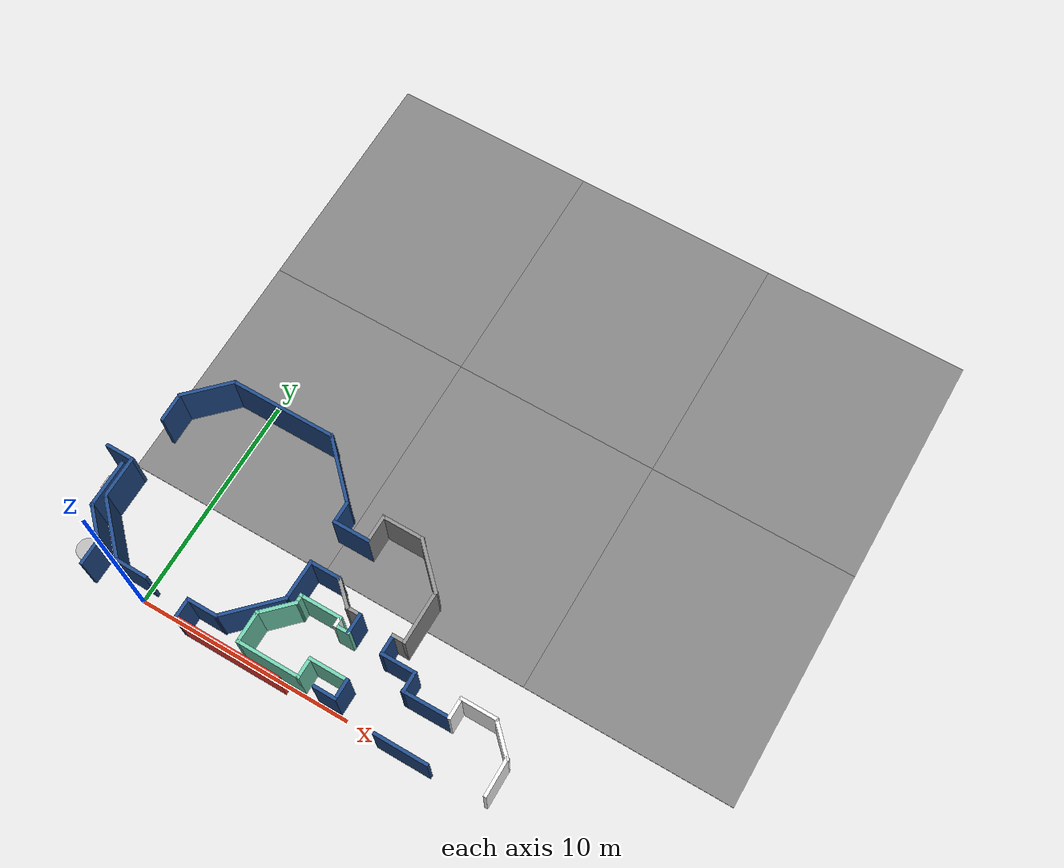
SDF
<sdf version="1.7">
 <world name="default">
  <model name="among_us_world">
   <pose>0.133216 -0.12311 0 0 -0 0</pose>
   <link name="Wall_0">
    <collision name="Wall_0_Collision">
     <geometry><box><size>5 0.15 2.5</size></box></geometry>
     <pose>0 0 1.25 0 -0 0</pose>
    </collision>
    <visual name="Wall_0_Visual">
     <pose>0 0 1.25 0 -0 0</pose>
     <geometry><box><size>5 0.15 2.5</size></box></geometry>
     <material>
      <ambient>0.12549 0.290196 0.529412 1</ambient>
      <diffuse>0.12549 0.290196 0.529412 1</diffuse>
      <specular>0.08 0.08 0.08 1</specular>
      <emissive>0 0 0 1</emissive>
      <pbr>
       <metal>
        <albedo_map>model://asphalt_plane/materials/textures/tarmac.png</albedo_map>
        <roughness>0.85</roughness>
        <metalness>0</metalness>
       </metal>
      </pbr>
     </material>
     <meta><layer>0</layer></meta>
    </visual>
    <pose>0.883234 9.56872 0 0 -0 0</pose>
   </link>
   <link name="Wall_1">
    <collision name="Wall_1_Collision">
     <geometry><box><size>3.25 0.15 2.5</size></box></geometry>
     <pose>0 0 1.25 0 -0 0</pose>
    </collision>
    <visual name="Wall_1_Visual">
     <pose>0 0 1.25 0 -0 0</pose>
     <geometry><box><size>3.25 0.15 2.5</size></box></geometry>
     <material>
      <ambient>0.12549 0.290196 0.529412 1</ambient>
      <diffuse>0.12549 0.290196 0.529412 1</diffuse>
      <specular>0.08 0.08 0.08 1</specular>
      <emissive>0 0 0 1</emissive>
      <pbr>
       <metal>
        <albedo_map>model://asphalt_plane/materials/textures/tarmac.png</albedo_map>
        <roughness>0.85</roughness>
        <metalness>0</metalness>
       </metal>
      </pbr>
     </material>
     <meta><layer>0</layer></meta>
    </visual>
    <pose>4.40446 8.47278 0 0 -0 -0.785267</pose>
   </link>
   <link name="Wall_10">
    <collision name="Wall_10_Collision">
     <geometry><box><size>0.677967 0.15 2.5</size></box></geometry>
     <pose>0 0 1.25 0 -0 0</pose>
    </collision>
    <visual name="Wall_10_Visual">
     <pose>0 0 1.25 0 -0 0</pose>
     <geometry><box><size>0.677967 0.15 2.5</size></box></geometry>
     <material>
      <ambient>0.55 0.55 0.55 1</ambient>
      <diffuse>0.55 0.55 0.55 1</diffuse>
      <specular>0.08 0.08 0.08 1</specular>
      <emissive>0 0 0 1</emissive>
      <pbr><metal><roughness>0.85</roughness><metalness>0</metalness></metal></pbr>
     </material>
     <meta><layer>0</layer></meta>
    </visual>
    <pose>10.3484 3.61514 0 0 -0 3.14159</pose>
   </link>
   <link name="Wall_105">
    <collision name="Wall_105_Collision">
     <geometry><box><size>1.25 0.15 2.5</size></box></geometry>
     <pose>0 0 1.25 0 -0 0</pose>
    </collision>
    <visual name="Wall_105_Visual">
     <pose>0 0 1.25 0 -0 0</pose>
     <geometry><box><size>1.25 0.15 2.5</size></box></geometry>
     <material>
      <ambient>0.12549 0.290196 0.529412 1</ambient>
      <diffuse>0.12549 0.290196 0.529412 1</diffuse>
      <specular>0.08 0.08 0.08 1</specular>
      <emissive>0 0 0 1</emissive>
      <pbr>
       <metal>
        <albedo_map>model://among_us_world/materials/textures/ceiling_tiled_32_74_135.jpg</albedo_map>
        <roughness>0.85</roughness>
        <metalness>0</metalness>
       </metal>
      </pbr>
     </material>
     <meta><layer>0</layer></meta>
    </visual>
    <pose>-2.35669 0.402728 0 0 -0 1.5708</pose>
   </link>
   <link name="Wall_106">
    <collision name="Wall_106_Collision">
     <geometry><box><size>1.75 0.15 2.5</size></box></geometry>
     <pose>0 0 1.25 0 -0 0</pose>
    </collision>
    <visual name="Wall_106_Visual">
     <pose>0 0 1.25 0 -0 0</pose>
     <geometry><box><size>1.75 0.15 2.5</size></box></geometry>
     <material>
      <ambient>0.12549 0.290196 0.529412 1</ambient>
      <diffuse>0.12549 0.290196 0.529412 1</diffuse>
      <specular>0.08 0.08 0.08 1</specular>
      <emissive>0 0 0 1</emissive>
      <pbr>
       <metal>
        <albedo_map>model://among_us_world/materials/textures/ceiling_tiled_32_74_135.jpg</albedo_map>
        <roughness>0.85</roughness>
        <metalness>0</metalness>
       </metal>
      </pbr>
     </material>
     <meta><layer>0</layer></meta>
    </visual>
    <pose>-2.92238 1.51841 0 0 -0 2.35619</pose>
   </link>
   <link name="Wall_108">
    <collision name="Wall_108_Collision">
     <geometry><box><size>2.25 0.15 2.5</size></box></geometry>
     <pose>0 0 1.25 0 -0 0</pose>
    </collision>
    <visual name="Wall_108_Visual">
     <pose>0 0 1.25 0 -0 0</pose>
     <geometry><box><size>2.25 0.15 2.5</size></box></geometry>
     <material>
      <ambient>0.12549 0.290196 0.529412 1</ambient>
      <diffuse>0.12549 0.290196 0.529412 1</diffuse>
      <specular>0.08 0.08 0.08 1</specular>
      <emissive>0 0 0 1</emissive>
      <pbr>
       <metal>
        <albedo_map>model://among_us_world/materials/textures/ceiling_tiled_32_74_135.jpg</albedo_map>
        <roughness>0.85</roughness>
        <metalness>0</metalness>
       </metal>
      </pbr>
     </material>
     <meta><layer>0</layer></meta>
    </visual>
    <pose>-3.48806 3.1341 0 0 -0 1.5708</pose>
   </link>
   <link name="Wall_11">
    <collision name="Wall_11_Collision">
     <geometry><box><size>1 0.15 2.5</size></box></geometry>
     <pose>0 0 1.25 0 -0 0</pose>
    </collision>
    <visual name="Wall_11_Visual">
     <pose>0 0 1.25 0 -0 0</pose>
     <geometry><box><size>1 0.15 2.5</size></box></geometry>
     <material>
      <ambient>0.12549 0.290196 0.529412 1</ambient>
      <diffuse>0.12549 0.290196 0.529412 1</diffuse>
      <specular>0.08 0.08 0.08 1</specular>
      <emissive>0 0 0 1</emissive>
      <pbr>
       <metal>
        <albedo_map>model://asphalt_plane/materials/textures/tarmac.png</albedo_map>
        <roughness>0.85</roughness>
        <metalness>0</metalness>
       </metal>
      </pbr>
     </material>
     <meta><layer>0</layer></meta>
    </visual>
    <pose>10.0844 3.17225 0 0 -0 -1.5708</pose>
   </link>
   <link name="Wall_111">
    <collision name="Wall_111_Collision">
     <geometry><box><size>1.37673 0.15 2.5</size></box></geometry>
     <pose>0 0 1.25 0 -0 0</pose>
    </collision>
    <visual name="Wall_111_Visual">
     <pose>0 0 1.25 0 -0 0</pose>
     <geometry><box><size>1.37673 0.15 2.5</size></box></geometry>
     <material>
      <ambient>0.12549 0.290196 0.529412 1</ambient>
      <diffuse>0.12549 0.290196 0.529412 1</diffuse>
      <specular>0.08 0.08 0.08 1</specular>
      <emissive>0 0 0 1</emissive>
      <pbr>
       <metal>
        <albedo_map>model://asphalt_plane/materials/textures/tarmac.png</albedo_map>
        <roughness>0.85</roughness>
        <metalness>0</metalness>
       </metal>
      </pbr>
     </material>
     <meta><layer>0</layer></meta>
    </visual>
    <pose>-3.85134 4.5341 0 0 -0 0</pose>
   </link>
   <link name="Wall_112">
    <collision name="Wall_112_Collision">
     <geometry><box><size>2 0.15 2.5</size></box></geometry>
     <pose>0 0 1.25 0 -0 0</pose>
    </collision>
    <visual name="Wall_112_Visual">
     <pose>0 0 1.25 0 -0 0</pose>
     <geometry><box><size>2 0.15 2.5</size></box></geometry>
     <material>
      <ambient>0.12549 0.290196 0.529412 1</ambient>
      <diffuse>0.12549 0.290196 0.529412 1</diffuse>
      <specular>0.08 0.08 0.08 1</specular>
      <emissive>0 0 0 1</emissive>
      <pbr>
       <metal>
        <albedo_map>model://asphalt_plane/materials/textures/tarmac.png</albedo_map>
        <roughness>0.85</roughness>
        <metalness>0</metalness>
       </metal>
      </pbr>
     </material>
     <meta><layer>0</layer></meta>
    </visual>
    <pose>-3.23806 3.6091 0 0 -0 -1.5708</pose>
   </link>
   <link name="Wall_114">
    <collision name="Wall_114_Collision">
     <geometry><box><size>3 0.15 2.5</size></box></geometry>
     <pose>0 0 1.25 0 -0 0</pose>
    </collision>
    <visual name="Wall_114_Visual">
     <pose>0 0 1.25 0 -0 0</pose>
     <geometry><box><size>3 0.15 2.5</size></box></geometry>
     <material>
      <ambient>0.12549 0.290196 0.529412 1</ambient>
      <diffuse>0.12549 0.290196 0.529412 1</diffuse>
      <specular>0.08 0.08 0.08 1</specular>
      <emissive>0 0 0 1</emissive>
      <pbr>
       <metal>
        <albedo_map>model://asphalt_plane/materials/textures/tarmac.png</albedo_map>
        <roughness>0.85</roughness>
        <metalness>0</metalness>
       </metal>
      </pbr>
     </material>
     <meta><layer>0</layer></meta>
    </visual>
    <pose>-2.23043 1.67647 0 0 -0 -0.785398</pose>
   </link>
   <link name="Wall_115">
    <collision name="Wall_115_Collision">
     <geometry><box><size>1.5655 0.15 2.5</size></box></geometry>
     <pose>0 0 1.25 0 -0 0</pose>
    </collision>
    <visual name="Wall_115_Visual">
     <pose>0 0 1.25 0 -0 0</pose>
     <geometry><box><size>1.5655 0.15 2.5</size></box></geometry>
     <material>
      <ambient>0.12549 0.290196 0.529412 1</ambient>
      <diffuse>0.12549 0.290196 0.529412 1</diffuse>
      <specular>0.08 0.08 0.08 1</specular>
      <emissive>0 0 0 1</emissive>
      <pbr>
       <metal>
        <albedo_map>model://asphalt_plane/materials/textures/tarmac.png</albedo_map>
        <roughness>0.85</roughness>
        <metalness>0</metalness>
       </metal>
      </pbr>
     </material>
     <meta><layer>0</layer></meta>
    </visual>
    <pose>-0.515099 0.662156 0 0 -0 -0.00945</pose>
   </link>
   <link name="Wall_118">
    <collision name="Wall_118_Collision">
     <geometry><box><size>1.5 0.15 2.5</size></box></geometry>
     <pose>0 0 1.25 0 -0 0</pose>
    </collision>
    <visual name="Wall_118_Visual">
     <pose>0 0 1.25 0 -0 0</pose>
     <geometry><box><size>1.5 0.15 2.5</size></box></geometry>
     <material>
      <ambient>0.12549 0.290196 0.529412 1</ambient>
      <diffuse>0.12549 0.290196 0.529412 1</diffuse>
      <specular>0.08 0.08 0.08 1</specular>
      <emissive>0 0 0 1</emissive>
      <pbr>
       <metal>
        <albedo_map>model://asphalt_plane/materials/textures/tarmac.png</albedo_map>
        <roughness>0.85</roughness>
        <metalness>0</metalness>
       </metal>
      </pbr>
     </material>
     <meta><layer>0</layer></meta>
    </visual>
    <pose>6.27303 4.52497 0 0 -0 0</pose>
   </link>
   <link name="Wall_119">
    <collision name="Wall_119_Collision">
     <geometry><box><size>1.41276 0.15 2.5</size></box></geometry>
     <pose>0 0 1.25 0 -0 0</pose>
    </collision>
    <visual name="Wall_119_Visual">
     <pose>0 0 1.25 0 -0 0</pose>
     <geometry><box><size>1.41276 0.15 2.5</size></box></geometry>
     <material>
      <ambient>0.55 0.55 0.55 1</ambient>
      <diffuse>0.55 0.55 0.55 1</diffuse>
      <specular>0.08 0.08 0.08 1</specular>
      <emissive>0 0 0 1</emissive>
      <pbr><metal><roughness>0.85</roughness><metalness>0</metalness></metal></pbr>
     </material>
     <meta><layer>0</layer></meta>
    </visual>
    <pose>7.42533 4.09435 0 0 -0 -0.750545</pose>
   </link>
   <link name="Wall_12">
    <collision name="Wall_12_Collision">
     <geometry><box><size>1.67797 0.15 2.5</size></box></geometry>
     <pose>0 0 1.25 0 -0 0</pose>
    </collision>
    <visual name="Wall_12_Visual">
     <pose>0 0 1.25 0 -0 0</pose>
     <geometry><box><size>1.67797 0.15 2.5</size></box></geometry>
     <material>
      <ambient>0.12549 0.290196 0.529412 1</ambient>
      <diffuse>0.12549 0.290196 0.529412 1</diffuse>
      <specular>0.08 0.08 0.08 1</specular>
      <emissive>0 0 0 1</emissive>
      <pbr>
       <metal>
        <albedo_map>model://asphalt_plane/materials/textures/tarmac.png</albedo_map>
        <roughness>0.85</roughness>
        <metalness>0</metalness>
       </metal>
      </pbr>
     </material>
     <meta><layer>0</layer></meta>
    </visual>
    <pose>10.8484 2.76514 0 0 -0 0</pose>
   </link>
   <link name="Wall_122">
    <collision name="Wall_122_Collision">
     <geometry><box><size>0.75 0.15 2.5</size></box></geometry>
     <pose>0 0 1.25 0 -0 0</pose>
    </collision>
    <visual name="Wall_122_Visual">
     <pose>0 0 1.25 0 -0 0</pose>
     <geometry><box><size>0.75 0.15 2.5</size></box></geometry>
     <material>
      <ambient>0.55 0.55 0.55 1</ambient>
      <diffuse>0.55 0.55 0.55 1</diffuse>
      <specular>0.08 0.08 0.08 1</specular>
      <emissive>0 0 0 1</emissive>
      <pbr><metal><roughness>0.85</roughness><metalness>0</metalness></metal></pbr>
     </material>
     <meta><layer>0</layer></meta>
    </visual>
    <pose>8.18707 3.66372 0 0 -0 0</pose>
   </link>
   <link name="Wall_123">
    <collision name="Wall_123_Collision">
     <geometry><box><size>1 0.15 2.5</size></box></geometry>
     <pose>0 0 1.25 0 -0 0</pose>
    </collision>
    <visual name="Wall_123_Visual">
     <pose>0 0 1.25 0 -0 0</pose>
     <geometry><box><size>1 0.15 2.5</size></box></geometry>
     <material>
      <ambient>0.12549 0.290196 0.529412 1</ambient>
      <diffuse>0.12549 0.290196 0.529412 1</diffuse>
      <specular>0.08 0.08 0.08 1</specular>
      <emissive>0 0 0 1</emissive>
      <pbr>
       <metal>
        <albedo_map>model://asphalt_plane/materials/textures/tarmac.png</albedo_map>
        <roughness>0.85</roughness>
        <metalness>0</metalness>
       </metal>
      </pbr>
     </material>
     <meta><layer>0</layer></meta>
    </visual>
    <pose>8.48707 3.23872 0 0 -0 -1.5708</pose>
   </link>
   <link name="Wall_124">
    <collision name="Wall_124_Collision">
     <geometry><box><size>0.75 0.15 2.5</size></box></geometry>
     <pose>0 0 1.25 0 -0 0</pose>
    </collision>
    <visual name="Wall_124_Visual">
     <pose>0 0 1.25 0 -0 0</pose>
     <geometry><box><size>0.75 0.15 2.5</size></box></geometry>
     <material>
      <ambient>0.435294 0.796078 0.67451 1</ambient>
      <diffuse>0.435294 0.796078 0.67451 1</diffuse>
      <specular>0.08 0.08 0.08 1</specular>
      <emissive>0 0 0 1</emissive>
      <pbr>
       <metal>
        <albedo_map>model://among_us_world/materials/textures/ceiling_tiled_111_203_172.jpg</albedo_map>
        <roughness>0.85</roughness>
        <metalness>0</metalness>
       </metal>
      </pbr>
     </material>
     <meta><layer>0</layer></meta>
    </visual>
    <pose>8.18707 2.81372 0 0 -0 3.14159</pose>
   </link>
   <link name="Wall_125">
    <collision name="Wall_125_Collision">
     <geometry><box><size>0.5 0.15 2.5</size></box></geometry>
     <pose>0 0 1.25 0 -0 0</pose>
    </collision>
    <visual name="Wall_125_Visual">
     <pose>0 0 1.25 0 -0 0</pose>
     <geometry><box><size>0.5 0.15 2.5</size></box></geometry>
     <material>
      <ambient>1 1 1 1</ambient>
      <diffuse>1 1 1 1</diffuse>
      <specular>0.08 0.08 0.08 1</specular>
      <emissive>0 0 0 1</emissive>
      <pbr>
       <metal>
        <albedo_map>model://among_us_world/materials/textures/ceiling_tiled_255_255_255.jpg</albedo_map>
        <roughness>0.85</roughness>
        <metalness>0</metalness>
       </metal>
      </pbr>
     </material>
     <meta><layer>0</layer></meta>
    </visual>
    <pose>7.88707 2.98872 0 0 -0 1.5708</pose>
   </link>
   <link name="Wall_126">
    <collision name="Wall_126_Collision">
     <geometry><box><size>2 0.15 2.5</size></box></geometry>
     <pose>0 0 1.25 0 -0 0</pose>
    </collision>
    <visual name="Wall_126_Visual">
     <pose>0 0 1.25 0 -0 0</pose>
     <geometry><box><size>2 0.15 2.5</size></box></geometry>
     <material>
      <ambient>0.435294 0.796078 0.67451 1</ambient>
      <diffuse>0.435294 0.796078 0.67451 1</diffuse>
      <specular>0.08 0.08 0.08 1</specular>
      <emissive>0 0 0 1</emissive>
      <pbr>
       <metal>
        <albedo_map>model://among_us_world/materials/textures/ceiling_tiled_111_203_172.jpg</albedo_map>
        <roughness>0.85</roughness>
        <metalness>0</metalness>
       </metal>
      </pbr>
     </material>
     <meta><layer>0</layer></meta>
    </visual>
    <pose>6.96207 3.16372 0 0 -0 3.14159</pose>
   </link>
   <link name="Wall_127">
    <collision name="Wall_127_Collision">
     <geometry><box><size>0.5 0.15 2.5</size></box></geometry>
     <pose>0 0 1.25 0 -0 0</pose>
    </collision>
    <visual name="Wall_127_Visual">
     <pose>0 0 1.25 0 -0 0</pose>
     <geometry><box><size>0.5 0.15 2.5</size></box></geometry>
     <material>
      <ambient>0.435294 0.796078 0.67451 1</ambient>
      <diffuse>0.435294 0.796078 0.67451 1</diffuse>
      <specular>0.08 0.08 0.08 1</specular>
      <emissive>0 0 0 1</emissive>
      <pbr>
       <metal>
        <albedo_map>model://among_us_world/materials/textures/ceiling_tiled_111_203_172.jpg</albedo_map>
        <roughness>0.85</roughness>
        <metalness>0</metalness>
       </metal>
      </pbr>
     </material>
     <meta><layer>0</layer></meta>
    </visual>
    <pose>6.03707 2.98872 0 0 -0 -1.5708</pose>
   </link>
   <link name="Wall_128">
    <collision name="Wall_128_Collision">
     <geometry><box><size>1.75 0.15 2.5</size></box></geometry>
     <pose>0 0 1.25 0 -0 0</pose>
    </collision>
    <visual name="Wall_128_Visual">
     <pose>0 0 1.25 0 -0 0</pose>
     <geometry><box><size>1.75 0.15 2.5</size></box></geometry>
     <material>
      <ambient>0.435294 0.796078 0.67451 1</ambient>
      <diffuse>0.435294 0.796078 0.67451 1</diffuse>
      <specular>0.08 0.08 0.08 1</specular>
      <emissive>0 0 0 1</emissive>
      <pbr>
       <metal>
        <albedo_map>model://among_us_world/materials/textures/ceiling_tiled_111_203_172.jpg</albedo_map>
        <roughness>0.85</roughness>
        <metalness>0</metalness>
       </metal>
      </pbr>
     </material>
     <meta><layer>0</layer></meta>
    </visual>
    <pose>5.47138 2.24804 0 0 -0 -2.35619</pose>
   </link>
   <link name="Wall_129">
    <collision name="Wall_129_Collision">
     <geometry><box><size>1.5 0.15 2.5</size></box></geometry>
     <pose>0 0 1.25 0 -0 0</pose>
    </collision>
    <visual name="Wall_129_Visual">
     <pose>0 0 1.25 0 -0 0</pose>
     <geometry><box><size>1.5 0.15 2.5</size></box></geometry>
     <material>
      <ambient>0.435294 0.796078 0.67451 1</ambient>
      <diffuse>0.435294 0.796078 0.67451 1</diffuse>
      <specular>0.08 0.08 0.08 1</specular>
      <emissive>0 0 0 1</emissive>
      <pbr><metal><roughness>0.85</roughness><metalness>0</metalness></metal></pbr>
     </material>
     <meta><layer>0</layer></meta>
    </visual>
    <pose>4.9057 1.00735 0 0 -0 -1.5708</pose>
   </link>
   <link name="Wall_13">
    <collision name="Wall_13_Collision">
     <geometry><box><size>0.99953 0.15 2.5</size></box></geometry>
     <pose>0 0 1.25 0 -0 0</pose>
    </collision>
    <visual name="Wall_13_Visual">
     <pose>0 0 1.25 0 -0 0</pose>
     <geometry><box><size>0.99953 0.15 2.5</size></box></geometry>
     <material>
      <ambient>0.12549 0.290196 0.529412 1</ambient>
      <diffuse>0.12549 0.290196 0.529412 1</diffuse>
      <specular>0.08 0.08 0.08 1</specular>
      <emissive>0 0 0 1</emissive>
      <pbr>
       <metal>
        <albedo_map>model://asphalt_plane/materials/textures/tarmac.png</albedo_map>
        <roughness>0.85</roughness>
        <metalness>0</metalness>
       </metal>
      </pbr>
     </material>
     <meta><layer>0</layer></meta>
    </visual>
    <pose>11.6124 2.34037 0 0 -0 -1.5708</pose>
   </link>
   <link name="Wall_130">
    <collision name="Wall_130_Collision">
     <geometry><box><size>3 0.15 2.5</size></box></geometry>
     <pose>0 0 1.25 0 -0 0</pose>
    </collision>
    <visual name="Wall_130_Visual">
     <pose>0 0 1.25 0 -0 0</pose>
     <geometry><box><size>3 0.15 2.5</size></box></geometry>
     <material>
      <ambient>0.435294 0.796078 0.67451 1</ambient>
      <diffuse>0.435294 0.796078 0.67451 1</diffuse>
      <specular>0.08 0.08 0.08 1</specular>
      <emissive>0 0 0 1</emissive>
      <pbr>
       <metal>
        <albedo_map>model://among_us_world/materials/textures/ceiling_tiled_111_203_172.jpg</albedo_map>
        <roughness>0.85</roughness>
        <metalness>0</metalness>
       </metal>
      </pbr>
     </material>
     <meta><layer>0</layer></meta>
    </visual>
    <pose>6.3307 0.332351 0 0 -0 0</pose>
   </link>
   <link name="Wall_131">
    <collision name="Wall_131_Collision">
     <geometry><box><size>1 0.15 2.5</size></box></geometry>
     <pose>0 0 1.25 0 -0 0</pose>
    </collision>
    <visual name="Wall_131_Visual">
     <pose>0 0 1.25 0 -0 0</pose>
     <geometry><box><size>1 0.15 2.5</size></box></geometry>
     <material>
      <ambient>0.435294 0.796078 0.67451 1</ambient>
      <diffuse>0.435294 0.796078 0.67451 1</diffuse>
      <specular>0.08 0.08 0.08 1</specular>
      <emissive>0 0 0 1</emissive>
      <pbr>
       <metal>
        <albedo_map>model://among_us_world/materials/textures/ceiling_tiled_111_203_172.jpg</albedo_map>
        <roughness>0.85</roughness>
        <metalness>0</metalness>
       </metal>
      </pbr>
     </material>
     <meta><layer>0</layer></meta>
    </visual>
    <pose>7.7557 0.757351 0 0 -0 1.5708</pose>
   </link>
   <link name="Wall_132">
    <collision name="Wall_132_Collision">
     <geometry><box><size>1.85593 0.15 2.5</size></box></geometry>
     <pose>0 0 1.25 0 -0 0</pose>
    </collision>
    <visual name="Wall_132_Visual">
     <pose>0 0 1.25 0 -0 0</pose>
     <geometry><box><size>1.85593 0.15 2.5</size></box></geometry>
     <material>
      <ambient>0.435294 0.796078 0.67451 1</ambient>
      <diffuse>0.435294 0.796078 0.67451 1</diffuse>
      <specular>0.08 0.08 0.08 1</specular>
      <emissive>0 0 0 1</emissive>
      <pbr>
       <metal>
        <albedo_map>model://among_us_world/materials/textures/ceiling_tiled_111_203_172.jpg</albedo_map>
        <roughness>0.85</roughness>
        <metalness>0</metalness>
       </metal>
      </pbr>
     </material>
     <meta><layer>0</layer></meta>
    </visual>
    <pose>8.60867 1.18235 0 0 -0 0</pose>
   </link>
   <link name="Wall_133">
    <collision name="Wall_133_Collision">
     <geometry><box><size>1 0.15 2.5</size></box></geometry>
     <pose>0 0 1.25 0 -0 0</pose>
    </collision>
    <visual name="Wall_133_Visual">
     <pose>0 0 1.25 0 -0 0</pose>
     <geometry><box><size>1 0.15 2.5</size></box></geometry>
     <material>
      <ambient>0.12549 0.290196 0.529412 1</ambient>
      <diffuse>0.12549 0.290196 0.529412 1</diffuse>
      <specular>0.08 0.08 0.08 1</specular>
      <emissive>0 0 0 1</emissive>
      <pbr>
       <metal>
        <albedo_map>model://asphalt_plane/materials/textures/tarmac.png</albedo_map>
        <roughness>0.85</roughness>
        <metalness>0</metalness>
       </metal>
      </pbr>
     </material>
     <meta><layer>0</layer></meta>
    </visual>
    <pose>9.47952 0.757351 0 0 -0 -1.5708</pose>
   </link>
   <link name="Wall_134">
    <collision name="Wall_134_Collision">
     <geometry><box><size>1.10593 0.15 2.5</size></box></geometry>
     <pose>0 0 1.25 0 -0 0</pose>
    </collision>
    <visual name="Wall_134_Visual">
     <pose>0 0 1.25 0 -0 0</pose>
     <geometry><box><size>1.10593 0.15 2.5</size></box></geometry>
     <material>
      <ambient>0.12549 0.290196 0.529412 1</ambient>
      <diffuse>0.12549 0.290196 0.529412 1</diffuse>
      <specular>0.08 0.08 0.08 1</specular>
      <emissive>0 0 0 1</emissive>
      <pbr>
       <metal>
        <albedo_map>model://asphalt_plane/materials/textures/tarmac.png</albedo_map>
        <roughness>0.85</roughness>
        <metalness>0</metalness>
       </metal>
      </pbr>
     </material>
     <meta><layer>0</layer></meta>
    </visual>
    <pose>8.98367 0.332351 0 0 -0 3.14159</pose>
   </link>
   <link name="Wall_14">
    <collision name="Wall_14_Collision">
     <geometry><box><size>2.25007 0.15 2.5</size></box></geometry>
     <pose>0 0 1.25 0 -0 0</pose>
    </collision>
    <visual name="Wall_14_Visual">
     <pose>0 0 1.25 0 -0 0</pose>
     <geometry><box><size>2.25007 0.15 2.5</size></box></geometry>
     <material>
      <ambient>0.12549 0.290196 0.529412 1</ambient>
      <diffuse>0.12549 0.290196 0.529412 1</diffuse>
      <specular>0.08 0.08 0.08 1</specular>
      <emissive>0 0 0 1</emissive>
      <pbr>
       <metal>
        <albedo_map>model://asphalt_plane/materials/textures/tarmac.png</albedo_map>
        <roughness>0.85</roughness>
        <metalness>0</metalness>
       </metal>
      </pbr>
     </material>
     <meta><layer>0</layer></meta>
    </visual>
    <pose>12.6445 1.92431 0 0 -0 0.008281</pose>
   </link>
   <link name="Wall_15">
    <collision name="Wall_15_Collision">
     <geometry><box><size>1.02562 0.15 2.5</size></box></geometry>
     <pose>0 0 1.25 0 -0 0</pose>
    </collision>
    <visual name="Wall_15_Visual">
     <pose>0 0 1.25 0 -0 0</pose>
     <geometry><box><size>1.02562 0.15 2.5</size></box></geometry>
     <material>
      <ambient>1 1 1 1</ambient>
      <diffuse>1 1 1 1</diffuse>
      <specular>0.08 0.08 0.08 1</specular>
      <emissive>0 0 0 1</emissive>
      <pbr>
       <metal>
        <albedo_map>model://among_us_world/materials/textures/ceiling_tiled_46_52_54.jpg</albedo_map>
        <roughness>0.85</roughness>
        <metalness>0</metalness>
       </metal>
      </pbr>
     </material>
     <meta><layer>0</layer></meta>
    </visual>
    <pose>13.7124 2.37081 0 0 -0 1.5708</pose>
   </link>
   <link name="Wall_179">
    <collision name="Wall_179_Collision">
     <geometry><box><size>1.90693 0.15 2.5</size></box></geometry>
     <pose>0 0 1.25 0 -0 0</pose>
    </collision>
    <visual name="Wall_179_Visual">
     <pose>0 0 1.25 0 -0 0</pose>
     <geometry><box><size>1.90693 0.15 2.5</size></box></geometry>
     <material>
      <ambient>0.12549 0.290196 0.529412 1</ambient>
      <diffuse>0.12549 0.290196 0.529412 1</diffuse>
      <specular>0.08 0.08 0.08 1</specular>
      <emissive>0 0 0 1</emissive>
      <pbr>
       <metal>
        <albedo_map>model://asphalt_plane/materials/textures/tarmac.png</albedo_map>
        <roughness>0.85</roughness>
        <metalness>0</metalness>
       </metal>
      </pbr>
     </material>
     <meta><layer>0</layer></meta>
    </visual>
    <pose>5.59803 3.64664 0 0 -0 -1.58851</pose>
   </link>
   <link name="Wall_180">
    <collision name="Wall_180_Collision">
     <geometry><box><size>3 0.15 2.5</size></box></geometry>
     <pose>0 0 1.25 0 -0 0</pose>
    </collision>
    <visual name="Wall_180_Visual">
     <pose>0 0 1.25 0 -0 0</pose>
     <geometry><box><size>3 0.15 2.5</size></box></geometry>
     <material>
      <ambient>0.12549 0.290196 0.529412 1</ambient>
      <diffuse>0.12549 0.290196 0.529412 1</diffuse>
      <specular>0.08 0.08 0.08 1</specular>
      <emissive>0 0 0 1</emissive>
      <pbr>
       <metal>
        <albedo_map>model://asphalt_plane/materials/textures/tarmac.png</albedo_map>
        <roughness>0.85</roughness>
        <metalness>0</metalness>
       </metal>
      </pbr>
     </material>
     <meta><layer>0</layer></meta>
    </visual>
    <pose>4.57485 1.76069 0 0 -0 -2.35619</pose>
   </link>
   <link name="Wall_183">
    <collision name="Wall_183_Collision">
     <geometry><box><size>1.5 0.15 2.5</size></box></geometry>
     <pose>0 0 1.25 0 -0 0</pose>
    </collision>
    <visual name="Wall_183_Visual">
     <pose>0 0 1.25 0 -0 0</pose>
     <geometry><box><size>1.5 0.15 2.5</size></box></geometry>
     <material>
      <ambient>0.12549 0.290196 0.529412 1</ambient>
      <diffuse>0.12549 0.290196 0.529412 1</diffuse>
      <specular>0.08 0.08 0.08 1</specular>
      <emissive>0 0 0 1</emissive>
      <pbr>
       <metal>
        <albedo_map>model://asphalt_plane/materials/textures/tarmac.png</albedo_map>
        <roughness>0.85</roughness>
        <metalness>0</metalness>
       </metal>
      </pbr>
     </material>
     <meta><layer>0</layer></meta>
    </visual>
    <pose>2.89222 0.753062 0 0 -0 3.14159</pose>
   </link>
   <link name="Wall_184">
    <collision name="Wall_184_Collision">
     <geometry><box><size>1 0.15 2.5</size></box></geometry>
     <pose>0 0 1.25 0 -0 0</pose>
    </collision>
    <visual name="Wall_184_Visual">
     <pose>0 0 1.25 0 -0 0</pose>
     <geometry><box><size>1 0.15 2.5</size></box></geometry>
     <material>
      <ambient>0.12549 0.290196 0.529412 1</ambient>
      <diffuse>0.12549 0.290196 0.529412 1</diffuse>
      <specular>0.08 0.08 0.08 1</specular>
      <emissive>0 0 0 1</emissive>
      <pbr>
       <metal>
        <albedo_map>model://asphalt_plane/materials/textures/tarmac.png</albedo_map>
        <roughness>0.85</roughness>
        <metalness>0</metalness>
       </metal>
      </pbr>
     </material>
     <meta><layer>0</layer></meta>
    </visual>
    <pose>2.21722 0.328062 0 0 -0 -1.5708</pose>
   </link>
   <link name="Wall_185">
    <collision name="Wall_185_Collision">
     <geometry><box><size>5 0.15 2.5</size></box></geometry>
     <pose>0 0 1.25 0 -0 0</pose>
    </collision>
    <visual name="Wall_185_Visual">
     <pose>0 0 1.25 0 -0 0</pose>
     <geometry><box><size>5 0.15 2.5</size></box></geometry>
     <material>
      <ambient>0.95 0.22 0.18 1</ambient>
      <diffuse>0.95 0.22 0.18 1</diffuse>
      <specular>0.08 0.08 0.08 1</specular>
      <emissive>0 0 0 1</emissive>
      <pbr>
       <metal>
        <albedo_map>model://among_us_world/materials/textures/ceiling_tiled_164_0_0.jpg</albedo_map>
        <roughness>0.85</roughness>
        <metalness>0</metalness>
       </metal>
      </pbr>
     </material>
     <meta><layer>0</layer></meta>
    </visual>
    <pose>4.64222 -0.096938 0 0 -0 0</pose>
   </link>
   <link name="Wall_19">
    <collision name="Wall_19_Collision">
     <geometry><box><size>1.75 0.15 2.5</size></box></geometry>
     <pose>0 0 1.25 0 -0 0</pose>
    </collision>
    <visual name="Wall_19_Visual">
     <pose>0 0 1.25 0 -0 0</pose>
     <geometry><box><size>1.75 0.15 2.5</size></box></geometry>
     <material>
      <ambient>1 1 1 1</ambient>
      <diffuse>1 1 1 1</diffuse>
      <specular>0.08 0.08 0.08 1</specular>
      <emissive>0 0 0 1</emissive>
      <pbr>
       <metal>
        <albedo_map>model://among_us_world/materials/textures/ceiling_tiled_46_52_54.jpg</albedo_map>
        <roughness>0.85</roughness>
        <metalness>0</metalness>
       </metal>
      </pbr>
     </material>
     <meta><layer>0</layer></meta>
    </visual>
    <pose>14.5124 2.80862 0 0 -0 0</pose>
   </link>
   <link name="Wall_20">
    <collision name="Wall_20_Collision">
     <geometry><box><size>1.75 0.15 2.5</size></box></geometry>
     <pose>0 0 1.25 0 -0 0</pose>
    </collision>
    <visual name="Wall_20_Visual">
     <pose>0 0 1.25 0 -0 0</pose>
     <geometry><box><size>1.75 0.15 2.5</size></box></geometry>
     <material>
      <ambient>1 1 1 1</ambient>
      <diffuse>1 1 1 1</diffuse>
      <specular>0.08 0.08 0.08 1</specular>
      <emissive>0 0 0 1</emissive>
      <pbr>
       <metal>
        <albedo_map>model://among_us_world/materials/textures/ceiling_tiled_46_52_54.jpg</albedo_map>
        <roughness>0.85</roughness>
        <metalness>0</metalness>
       </metal>
      </pbr>
     </material>
     <meta><layer>0</layer></meta>
    </visual>
    <pose>15.8781 2.24293 0 0 -0 -0.785398</pose>
   </link>
   <link name="Wall_21">
    <collision name="Wall_21_Collision">
     <geometry><box><size>1.75 0.15 2.5</size></box></geometry>
     <pose>0 0 1.25 0 -0 0</pose>
    </collision>
    <visual name="Wall_21_Visual">
     <pose>0 0 1.25 0 -0 0</pose>
     <geometry><box><size>1.75 0.15 2.5</size></box></geometry>
     <material>
      <ambient>1 1 1 1</ambient>
      <diffuse>1 1 1 1</diffuse>
      <specular>0.08 0.08 0.08 1</specular>
      <emissive>0 0 0 1</emissive>
      <pbr>
       <metal>
        <albedo_map>model://among_us_world/materials/textures/ceiling_tiled_255_255_255.jpg</albedo_map>
        <roughness>0.85</roughness>
        <metalness>0</metalness>
       </metal>
      </pbr>
     </material>
     <meta><layer>0</layer></meta>
    </visual>
    <pose>16.4438 0.877247 0 0 -0 -1.5708</pose>
   </link>
   <link name="Wall_25">
    <collision name="Wall_25_Collision">
     <geometry><box><size>2.5 0.15 2.5</size></box></geometry>
     <pose>0 0 1.25 0 -0 0</pose>
    </collision>
    <visual name="Wall_25_Visual">
     <pose>0 0 1.25 0 -0 0</pose>
     <geometry><box><size>2.5 0.15 2.5</size></box></geometry>
     <material>
      <ambient>0.12549 0.290196 0.529412 1</ambient>
      <diffuse>0.12549 0.290196 0.529412 1</diffuse>
      <specular>0.08 0.08 0.08 1</specular>
      <emissive>0 0 0 1</emissive>
      <pbr>
       <metal>
        <albedo_map>model://asphalt_plane/materials/textures/tarmac.png</albedo_map>
        <roughness>0.85</roughness>
        <metalness>0</metalness>
       </metal>
      </pbr>
     </material>
     <meta><layer>0</layer></meta>
    </visual>
    <pose>12.7142 -0.045708 0 0 -0 3.14159</pose>
   </link>
   <link name="Wall_29">
    <collision name="Wall_29_Collision">
     <geometry><box><size>2.5 0.15 2.5</size></box></geometry>
     <pose>0 0 1.25 0 -0 0</pose>
    </collision>
    <visual name="Wall_29_Visual">
     <pose>0 0 1.25 0 -0 0</pose>
     <geometry><box><size>2.5 0.15 2.5</size></box></geometry>
     <material>
      <ambient>0.12549 0.290196 0.529412 1</ambient>
      <diffuse>0.12549 0.290196 0.529412 1</diffuse>
      <specular>0.08 0.08 0.08 1</specular>
      <emissive>0 0 0 1</emissive>
      <pbr>
       <metal>
        <albedo_map>model://asphalt_plane/materials/textures/tarmac.png</albedo_map>
        <roughness>0.85</roughness>
        <metalness>0</metalness>
       </metal>
      </pbr>
     </material>
     <meta><layer>0</layer></meta>
    </visual>
    <pose>-2.37241 8.73794 0 0 -0 -2.35611</pose>
   </link>
   <link name="Wall_30">
    <collision name="Wall_30_Collision">
     <geometry><box><size>1.4062 0.15 2.5</size></box></geometry>
     <pose>0 0 1.25 0 -0 0</pose>
    </collision>
    <visual name="Wall_30_Visual">
     <pose>0 0 1.25 0 -0 0</pose>
     <geometry><box><size>1.4062 0.15 2.5</size></box></geometry>
     <material>
      <ambient>0.12549 0.290196 0.529412 1</ambient>
      <diffuse>0.12549 0.290196 0.529412 1</diffuse>
      <specular>0.08 0.08 0.08 1</specular>
      <emissive>0 0 0 1</emissive>
      <pbr>
       <metal>
        <albedo_map>model://asphalt_plane/materials/textures/tarmac.png</albedo_map>
        <roughness>0.85</roughness>
        <metalness>0</metalness>
       </metal>
      </pbr>
     </material>
     <meta><layer>0</layer></meta>
    </visual>
    <pose>-3.19527 7.27912 0 0 -0 -1.55841</pose>
   </link>
   <link name="Wall_4">
    <collision name="Wall_4_Collision">
     <geometry><box><size>1.06331 0.15 2.5</size></box></geometry>
     <pose>0 0 1.25 0 -0 0</pose>
    </collision>
    <visual name="Wall_4_Visual">
     <pose>0 0 1.25 0 -0 0</pose>
     <geometry><box><size>1.06331 0.15 2.5</size></box></geometry>
     <material>
      <ambient>0.12549 0.290196 0.529412 1</ambient>
      <diffuse>0.12549 0.290196 0.529412 1</diffuse>
      <specular>0.08 0.08 0.08 1</specular>
      <emissive>0 0 0 1</emissive>
      <pbr>
       <metal>
        <albedo_map>model://asphalt_plane/materials/textures/tarmac.png</albedo_map>
        <roughness>0.85</roughness>
        <metalness>0</metalness>
       </metal>
      </pbr>
     </material>
     <meta><layer>0</layer></meta>
    </visual>
    <pose>5.50068 6.92018 0 0 -0 -1.5708</pose>
   </link>
   <link name="Wall_5">
    <collision name="Wall_5_Collision">
     <geometry><box><size>1.75 0.15 2.5</size></box></geometry>
     <pose>0 0 1.25 0 -0 0</pose>
    </collision>
    <visual name="Wall_5_Visual">
     <pose>0 0 1.25 0 -0 0</pose>
     <geometry><box><size>1.75 0.15 2.5</size></box></geometry>
     <material>
      <ambient>0.12549 0.290196 0.529412 1</ambient>
      <diffuse>0.12549 0.290196 0.529412 1</diffuse>
      <specular>0.08 0.08 0.08 1</specular>
      <emissive>0 0 0 1</emissive>
      <pbr>
       <metal>
        <albedo_map>model://asphalt_plane/materials/textures/tarmac.png</albedo_map>
        <roughness>0.85</roughness>
        <metalness>0</metalness>
       </metal>
      </pbr>
     </material>
     <meta><layer>0</layer></meta>
    </visual>
    <pose>6.30068 6.44797 0 0 -0 0</pose>
   </link>
   <link name="Wall_6">
    <collision name="Wall_6_Collision">
     <geometry><box><size>1.31331 0.15 2.5</size></box></geometry>
     <pose>0 0 1.25 0 -0 0</pose>
    </collision>
    <visual name="Wall_6_Visual">
     <pose>0 0 1.25 0 -0 0</pose>
     <geometry><box><size>1.31331 0.15 2.5</size></box></geometry>
     <material>
      <ambient>0.55 0.55 0.55 1</ambient>
      <diffuse>0.55 0.55 0.55 1</diffuse>
      <specular>0.08 0.08 0.08 1</specular>
      <emissive>0 0 0 1</emissive>
      <pbr><metal><roughness>0.85</roughness><metalness>0</metalness></metal></pbr>
     </material>
     <meta><layer>0</layer></meta>
    </visual>
    <pose>7.10068 7.04518 0 0 -0 1.5708</pose>
   </link>
   <link name="Wall_7">
    <collision name="Wall_7_Collision">
     <geometry><box><size>2 0.15 2.5</size></box></geometry>
     <pose>0 0 1.25 0 -0 0</pose>
    </collision>
    <visual name="Wall_7_Visual">
     <pose>0 0 1.25 0 -0 0</pose>
     <geometry><box><size>2 0.15 2.5</size></box></geometry>
     <material>
      <ambient>0.55 0.55 0.55 1</ambient>
      <diffuse>0.55 0.55 0.55 1</diffuse>
      <specular>0.08 0.08 0.08 1</specular>
      <emissive>0 0 0 1</emissive>
      <pbr><metal><roughness>0.85</roughness><metalness>0</metalness></metal></pbr>
     </material>
     <meta><layer>0</layer></meta>
    </visual>
    <pose>8.02568 7.62684 0 0 -0 0</pose>
   </link>
   <link name="Wall_8">
    <collision name="Wall_8_Collision">
     <geometry><box><size>2.5 0.15 2.5</size></box></geometry>
     <pose>0 0 1.25 0 -0 0</pose>
    </collision>
    <visual name="Wall_8_Visual">
     <pose>0 0 1.25 0 -0 0</pose>
     <geometry><box><size>2.5 0.15 2.5</size></box></geometry>
     <material>
      <ambient>0.55 0.55 0.55 1</ambient>
      <diffuse>0.55 0.55 0.55 1</diffuse>
      <specular>0.08 0.08 0.08 1</specular>
      <emissive>0 0 0 1</emissive>
      <pbr><metal><roughness>0.85</roughness><metalness>0</metalness></metal></pbr>
     </material>
     <meta><layer>0</layer></meta>
    </visual>
    <pose>9.78153 6.79599 0 0 -0 -0.785398</pose>
   </link>
   <link name="Wall_9">
    <collision name="Wall_9_Collision">
     <geometry><box><size>2.5 0.15 2.5</size></box></geometry>
     <pose>0 0 1.25 0 -0 0</pose>
    </collision>
    <visual name="Wall_9_Visual">
     <pose>0 0 1.25 0 -0 0</pose>
     <geometry><box><size>2.5 0.15 2.5</size></box></geometry>
     <material>
      <ambient>0.55 0.55 0.55 1</ambient>
      <diffuse>0.55 0.55 0.55 1</diffuse>
      <specular>0.08 0.08 0.08 1</specular>
      <emissive>0 0 0 1</emissive>
      <pbr><metal><roughness>0.85</roughness><metalness>0</metalness></metal></pbr>
     </material>
     <meta><layer>0</layer></meta>
    </visual>
    <pose>10.6124 4.79014 0 0 -0 -1.5708</pose>
   </link>
   <static>1</static>
  </model>
  <model name="asphalt_tile_02_02">
   <static>1</static>
   <pose>1.000 10.300 -0.020 0 -0 0</pose>
   <link name="link">
    <collision name="collision"><geometry><box><size>9.600 11.000 0.040</size></box></geometry></collision>
    <visual name="visual">
     <cast_shadows>0</cast_shadows>
     <geometry><box><size>9.600 11.000 0.040</size></box></geometry>
     <material>
      <ambient>0.5 0.5 0.5 1</ambient>
      <diffuse>0.5 0.5 0.5 1</diffuse>
      <specular>0.2 0.2 0.2 1</specular>
      <emissive>0 0 0 1</emissive>
      <pbr>
       <metal>
        <albedo_map>model://asphalt_plane/materials/textures/tarmac.png</albedo_map>
        <roughness>0.85</roughness>
        <metalness>0</metalness>
       </metal>
      </pbr>
     </material>
    </visual>
   </link>
  </model>
  <model name="asphalt_tile_02_03">
   <static>1</static>
   <pose>10.600 10.300 -0.020 0 -0 0</pose>
   <link name="link">
    <collision name="collision"><geometry><box><size>9.600 11.000 0.040</size></box></geometry></collision>
    <visual name="visual">
     <cast_shadows>0</cast_shadows>
     <geometry><box><size>9.600 11.000 0.040</size></box></geometry>
     <material>
      <ambient>0.5 0.5 0.5 1</ambient>
      <diffuse>0.5 0.5 0.5 1</diffuse>
      <specular>0.2 0.2 0.2 1</specular>
      <emissive>0 0 0 1</emissive>
      <pbr>
       <metal>
        <albedo_map>model://asphalt_plane/materials/textures/tarmac.png</albedo_map>
        <roughness>0.85</roughness>
        <metalness>0</metalness>
       </metal>
      </pbr>
     </material>
    </visual>
   </link>
  </model>
  <model name="asphalt_tile_02_04">
   <static>1</static>
   <pose>20.200 10.300 -0.020 0 -0 0</pose>
   <link name="link">
    <collision name="collision"><geometry><box><size>9.600 11.000 0.040</size></box></geometry></collision>
    <visual name="visual">
     <cast_shadows>0</cast_shadows>
     <geometry><box><size>9.600 11.000 0.040</size></box></geometry>
     <material>
      <ambient>0.5 0.5 0.5 1</ambient>
      <diffuse>0.5 0.5 0.5 1</diffuse>
      <specular>0.2 0.2 0.2 1</specular>
      <emissive>0 0 0 1</emissive>
      <pbr>
       <metal>
        <albedo_map>model://asphalt_plane/materials/textures/tarmac.png</albedo_map>
        <roughness>0.85</roughness>
        <metalness>0</metalness>
       </metal>
      </pbr>
     </material>
    </visual>
   </link>
  </model>
  <model name="asphalt_tile_03_02">
   <static>1</static>
   <pose>1.000 21.300 -0.020 0 -0 0</pose>
   <link name="link">
    <collision name="collision"><geometry><box><size>9.600 11.000 0.040</size></box></geometry></collision>
    <visual name="visual">
     <cast_shadows>0</cast_shadows>
     <geometry><box><size>9.600 11.000 0.040</size></box></geometry>
     <material>
      <ambient>0.5 0.5 0.5 1</ambient>
      <diffuse>0.5 0.5 0.5 1</diffuse>
      <specular>0.2 0.2 0.2 1</specular>
      <emissive>0 0 0 1</emissive>
      <pbr>
       <metal>
        <albedo_map>model://asphalt_plane/materials/textures/tarmac.png</albedo_map>
        <roughness>0.85</roughness>
        <metalness>0</metalness>
       </metal>
      </pbr>
     </material>
    </visual>
   </link>
  </model>
  <model name="asphalt_tile_03_03">
   <static>1</static>
   <pose>10.600 21.300 -0.020 0 -0 0</pose>
   <link name="link">
    <collision name="collision"><geometry><box><size>9.600 11.000 0.040</size></box></geometry></collision>
    <visual name="visual">
     <cast_shadows>0</cast_shadows>
     <geometry><box><size>9.600 11.000 0.040</size></box></geometry>
     <material>
      <ambient>0.5 0.5 0.5 1</ambient>
      <diffuse>0.5 0.5 0.5 1</diffuse>
      <specular>0.2 0.2 0.2 1</specular>
      <emissive>0 0 0 1</emissive>
      <pbr>
       <metal>
        <albedo_map>model://asphalt_plane/materials/textures/tarmac.png</albedo_map>
        <roughness>0.85</roughness>
        <metalness>0</metalness>
       </metal>
      </pbr>
     </material>
    </visual>
   </link>
  </model>
  <model name="asphalt_tile_03_04">
   <static>1</static>
   <pose>20.200 21.300 -0.020 0 -0 0</pose>
   <link name="link">
    <collision name="collision"><geometry><box><size>9.600 11.000 0.040</size></box></geometry></collision>
    <visual name="visual">
     <cast_shadows>0</cast_shadows>
     <geometry><box><size>9.600 11.000 0.040</size></box></geometry>
     <material>
      <ambient>0.5 0.5 0.5 1</ambient>
      <diffuse>0.5 0.5 0.5 1</diffuse>
      <specular>0.2 0.2 0.2 1</specular>
      <emissive>0 0 0 1</emissive>
      <pbr>
       <metal>
        <albedo_map>model://asphalt_plane/materials/textures/tarmac.png</albedo_map>
        <roughness>0.85</roughness>
        <metalness>0</metalness>
       </metal>
      </pbr>
     </material>
    </visual>
   </link>
  </model>
  <model name="bed_clone_0">
   <link name="link_1">
    <inertial>
     <mass>0.166557</mass>
     <inertia>
      <ixx>0.00618823</ixx>
      <ixy>0</ixy>
      <ixz>0</ixz>
      <iyy>0.0149173</iyy>
      <iyz>0</iyz>
      <izz>0.0190304</izz>
     </inertia>
    </inertial>
    <pose>0.268517 -0.007523 0.053425 0 -0 0</pose>
    <visual name="visual">
     <geometry><box><size>1 0.609172 0.273416</size></box></geometry>
     <material>
      <ambient>0.7 0.7 0.7 1</ambient>
      <diffuse>0.7 0.7 0.7 1</diffuse>
      <specular>0.08 0.08 0.08 1</specular>
      <emissive>0 0 0 1</emissive>
      <pbr><metal><roughness>0.8</roughness><metalness>0</metalness></metal></pbr>
     </material>
    </visual>
    <collision name="collision">
     <geometry><box><size>1 0.609172 0.273416</size></box></geometry>
     <surface>
      <friction>
       <ode><mu>1</mu><mu2>1</mu2><fdir1>0 0 0</fdir1><slip1>0</slip1><slip2>0</slip2></ode>
       <torsional>
        <coefficient>1</coefficient>
        <patch_radius>0</patch_radius>
        <surface_radius>0</surface_radius>
        <use_patch_radius>1</use_patch_radius>
        <ode><slip>0</slip></ode>
       </torsional>
      </friction>
      <bounce><restitution_coefficient>0</restitution_coefficient><threshold>1e+06</threshold></bounce>
      <contact>
       <collide_without_contact>0</collide_without_contact>
       <collide_without_contact_bitmask>1</collide_without_contact_bitmask>
       <collide_bitmask>1</collide_bitmask>
       <ode>
        <soft_cfm>0</soft_cfm>
        <soft_erp>0.2</soft_erp>
        <kp>1e+13</kp>
        <kd>1</kd>
        <max_vel>0.01</max_vel>
        <min_depth>0</min_depth>
       </ode>
       <bullet>
        <split_impulse>1</split_impulse>
        <split_impulse_penetration_threshold>-0.01</split_impulse_penetration_threshold>
        <soft_cfm>0</soft_cfm>
        <soft_erp>0.2</soft_erp>
        <kp>1e+13</kp>
        <kd>1</kd>
       </bullet>
      </contact>
     </surface>
    </collision>
   </link>
   <link name="link_2">
    <inertial>
     <mass>0.00661892</mass>
     <inertia>
      <ixx>3.651e-05</ixx>
      <ixy>0</ixy>
      <ixz>0</ixz>
      <iyy>3.722e-05</iyy>
      <iyz>0</iyz>
      <izz>4.631e-05</izz>
     </inertia>
    </inertial>
    <pose>-0.144333 -0.400103 -0.02691 0 -0 0</pose>
    <visual name="visual">
     <geometry><box><size>0.206441 0.203314 0.157681</size></box></geometry>
     <material>
      <ambient>0.7 0.7 0.7 1</ambient>
      <diffuse>0.7 0.7 0.7 1</diffuse>
      <specular>0.08 0.08 0.08 1</specular>
      <emissive>0 0 0 1</emissive>
      <pbr><metal><roughness>0.8</roughness><metalness>0</metalness></metal></pbr>
     </material>
    </visual>
    <collision name="collision">
     <geometry><box><size>0.206441 0.203314 0.157681</size></box></geometry>
     <surface>
      <friction>
       <ode><mu>1</mu><mu2>1</mu2><fdir1>0 0 0</fdir1><slip1>0</slip1><slip2>0</slip2></ode>
       <torsional>
        <coefficient>1</coefficient>
        <patch_radius>0</patch_radius>
        <surface_radius>0</surface_radius>
        <use_patch_radius>1</use_patch_radius>
        <ode><slip>0</slip></ode>
       </torsional>
      </friction>
      <bounce><restitution_coefficient>0</restitution_coefficient><threshold>1e+06</threshold></bounce>
      <contact>
       <collide_without_contact>0</collide_without_contact>
       <collide_without_contact_bitmask>1</collide_without_contact_bitmask>
       <collide_bitmask>1</collide_bitmask>
       <ode>
        <soft_cfm>0</soft_cfm>
        <soft_erp>0.2</soft_erp>
        <kp>1e+13</kp>
        <kd>1</kd>
        <max_vel>0.01</max_vel>
        <min_depth>0</min_depth>
       </ode>
       <bullet>
        <split_impulse>1</split_impulse>
        <split_impulse_penetration_threshold>-0.01</split_impulse_penetration_threshold>
        <soft_cfm>0</soft_cfm>
        <soft_erp>0.2</soft_erp>
        <kp>1e+13</kp>
        <kd>1</kd>
       </bullet>
      </contact>
     </surface>
    </collision>
   </link>
   <link name="link_2_clone">
    <inertial>
     <mass>0.00661892</mass>
     <inertia>
      <ixx>3.651e-05</ixx>
      <ixy>0</ixy>
      <ixz>0</ixz>
      <iyy>3.722e-05</iyy>
      <iyz>0</iyz>
      <izz>4.631e-05</izz>
     </inertia>
    </inertial>
    <pose>-0.124183 0.407627 -0.026515 0 -0 0</pose>
    <visual name="visual">
     <geometry><box><size>0.206441 0.203314 0.157681</size></box></geometry>
     <material>
      <ambient>0.7 0.7 0.7 1</ambient>
      <diffuse>0.7 0.7 0.7 1</diffuse>
      <specular>0.08 0.08 0.08 1</specular>
      <emissive>0 0 0 1</emissive>
      <pbr><metal><roughness>0.8</roughness><metalness>0</metalness></metal></pbr>
     </material>
    </visual>
    <collision name="collision">
     <geometry><box><size>0.206441 0.203314 0.157681</size></box></geometry>
     <surface>
      <friction>
       <ode><mu>1</mu><mu2>1</mu2><fdir1>0 0 0</fdir1><slip1>0</slip1><slip2>0</slip2></ode>
       <torsional>
        <coefficient>1</coefficient>
        <patch_radius>0</patch_radius>
        <surface_radius>0</surface_radius>
        <use_patch_radius>1</use_patch_radius>
        <ode><slip>0</slip></ode>
       </torsional>
      </friction>
      <bounce><restitution_coefficient>0</restitution_coefficient><threshold>1e+06</threshold></bounce>
      <contact>
       <collide_without_contact>0</collide_without_contact>
       <collide_without_contact_bitmask>1</collide_without_contact_bitmask>
       <collide_bitmask>1</collide_bitmask>
       <ode>
        <soft_cfm>0</soft_cfm>
        <soft_erp>0.2</soft_erp>
        <kp>1e+13</kp>
        <kd>1</kd>
        <max_vel>0.01</max_vel>
        <min_depth>0</min_depth>
       </ode>
       <bullet>
        <split_impulse>1</split_impulse>
        <split_impulse_penetration_threshold>-0.01</split_impulse_penetration_threshold>
        <soft_cfm>0</soft_cfm>
        <soft_erp>0.2</soft_erp>
        <kp>1e+13</kp>
        <kd>1</kd>
       </bullet>
      </contact>
     </surface>
    </collision>
   </link>
   <static>1</static>
   <pose>-3.68143 3.45279 0.093275 2.7e-05 0 -3.13537</pose>
  </model>
  <model name="unit_cylinder_0">
   <pose>-3.29507 0.643046 0.110467 -3e-06 -3e-06 0</pose>
   <link name="link">
    <inertial>
     <mass>1</mass>
     <inertia><ixx>0.145833</ixx><ixy>0</ixy><ixz>0</ixz><iyy>0.145833</iyy><iyz>0</iyz><izz>0.125</izz></inertia>
    </inertial>
    <collision name="collision">
     <geometry><cylinder><radius>0.5</radius><length>0.200944</length></cylinder></geometry>
    </collision>
    <visual name="visual">
     <geometry><cylinder><radius>0.5</radius><length>0.200944</length></cylinder></geometry>
     <material>
      <ambient>0.7 0.7 0.7 1</ambient>
      <diffuse>0.7 0.7 0.7 1</diffuse>
      <specular>0.08 0.08 0.08 1</specular>
      <emissive>0 0 0 1</emissive>
      <pbr><metal><roughness>0.8</roughness><metalness>0</metalness></metal></pbr>
     </material>
    </visual>
   </link>
  </model>
 </world>
</sdf>
